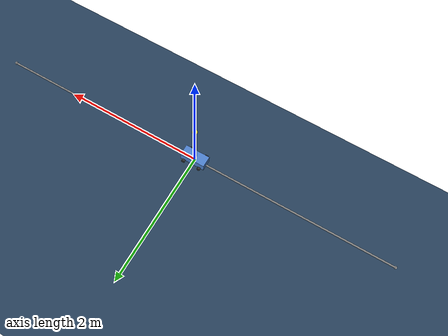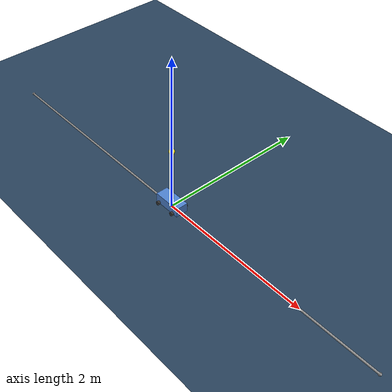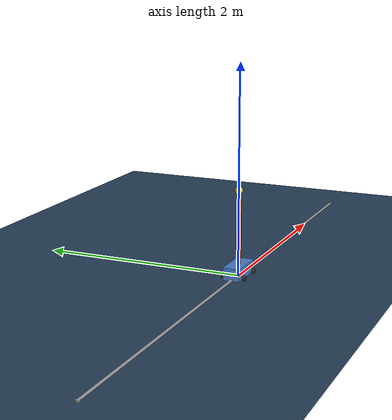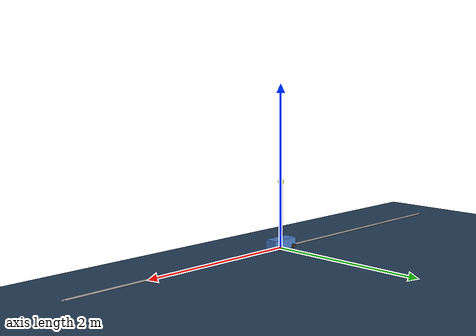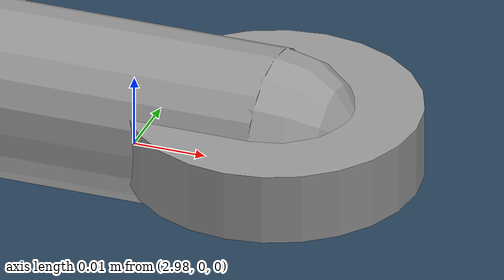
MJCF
<mujoco model="cartpole">
  <compiler angle="radian" autolimits="true"/>
  <option timestep="0.02" gravity="0 0 -9.81" integrator="RK4"/>

  <visual>
    <headlight ambient="0.4 0.4 0.4" diffuse="0.8 0.8 0.8" specular="0.1 0.1 0.1"/>
    <rgba haze="0.15 0.25 0.35 1"/>
  </visual>

  <asset>
    <texture type="skybox" builtin="gradient" rgb1="0.3 0.5 0.7" rgb2="0 0 0" width="512" height="3072"/>
    <texture type="2d" name="groundplane" builtin="checker" mark="edge" rgb1="0.2 0.3 0.4" rgb2="0.1 0.2 0.3"
             markrgb="0.8 0.8 0.8" width="300" height="300"/>
    <material name="groundplane" texture="groundplane" texuniform="true" texrepeat="5 5" reflectance="0.2"/>
    <material name="cart_mat" rgba="0.3 0.5 0.8 1"/>
    <material name="pole_mat" rgba="0.85 0.35 0.1 1"/>
    <material name="rail_mat" rgba="0.6 0.6 0.6 1"/>
  </asset>

  <worldbody>
    <light name="top" pos="0 0 5" dir="0 0 -1" directional="true" diffuse="0.7 0.7 0.7" specular="0.1 0.1 0.1"/>
    <geom name="floor" type="plane" size="10 10 0.1" material="groundplane" pos="0 0 -0.15"/>

    <!-- Rail / track -->
    <geom name="rail_left"  type="cylinder" fromto="-3 0 0  -3 0 0.01" size="0.02" material="rail_mat"/>
    <geom name="rail_right" type="cylinder" fromto=" 3 0 0   3 0 0.01" size="0.02" material="rail_mat"/>
    <geom name="rail_bar"   type="capsule"  fromto="-3 0 0.005  3 0 0.005" size="0.012" material="rail_mat"/>

    <!-- Cart body -->
    <body name="cart" pos="0 0 0">
      <joint name="slider" type="slide" axis="1 0 0" range="-3.0 3.0" damping="0.5"/>
      <geom name="cart_body" type="box" size="0.18 0.08 0.06" pos="0 0 0.06" material="cart_mat" mass="1.0"/>
      <geom name="wheel_fl" type="cylinder" fromto="-0.12 -0.09 0.025  -0.12 -0.12 0.025" size="0.025" rgba="0.2 0.2 0.2 1"/>
      <geom name="wheel_fr" type="cylinder" fromto=" 0.12 -0.09 0.025   0.12 -0.12 0.025" size="0.025" rgba="0.2 0.2 0.2 1"/>
      <geom name="wheel_bl" type="cylinder" fromto="-0.12  0.09 0.025  -0.12  0.12 0.025" size="0.025" rgba="0.2 0.2 0.2 1"/>
      <geom name="wheel_br" type="cylinder" fromto=" 0.12  0.09 0.025   0.12  0.12 0.025" size="0.025" rgba="0.2 0.2 0.2 1"/>

      <!-- Pole -->
      <body name="pole" pos="0 0 0.12">
        <joint name="hinge" type="hinge" axis="0 1 0" damping="0.002"/>
        <geom name="pole_geom" type="capsule" fromto="0 0 0  0 0 0.7" size="0.022" material="pole_mat" mass="0.12"/>
        <geom name="pole_tip" type="sphere" pos="0 0 0.7" size="0.035" rgba="1.0 0.9 0.0 1" mass="0.01"/>
      </body>
    </body>
  </worldbody>

  <actuator>
    <motor name="slide_motor" joint="slider" gear="25" ctrllimited="true" ctrlrange="-1 1"/>
  </actuator>

  <sensor>
    <jointpos  name="cart_pos"  joint="slider"/>
    <jointvel  name="cart_vel"  joint="slider"/>
    <jointpos  name="pole_ang"  joint="hinge"/>
    <jointvel  name="pole_vel"  joint="hinge"/>
  </sensor>
</mujoco>
